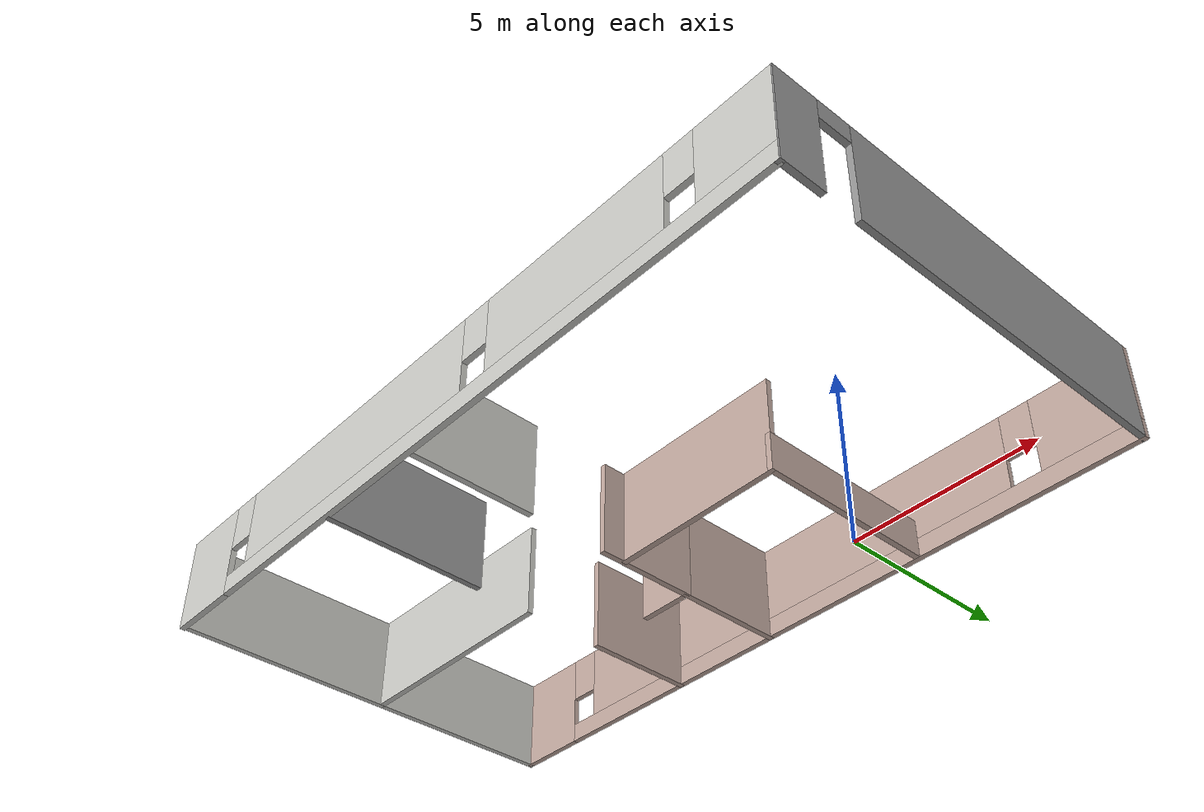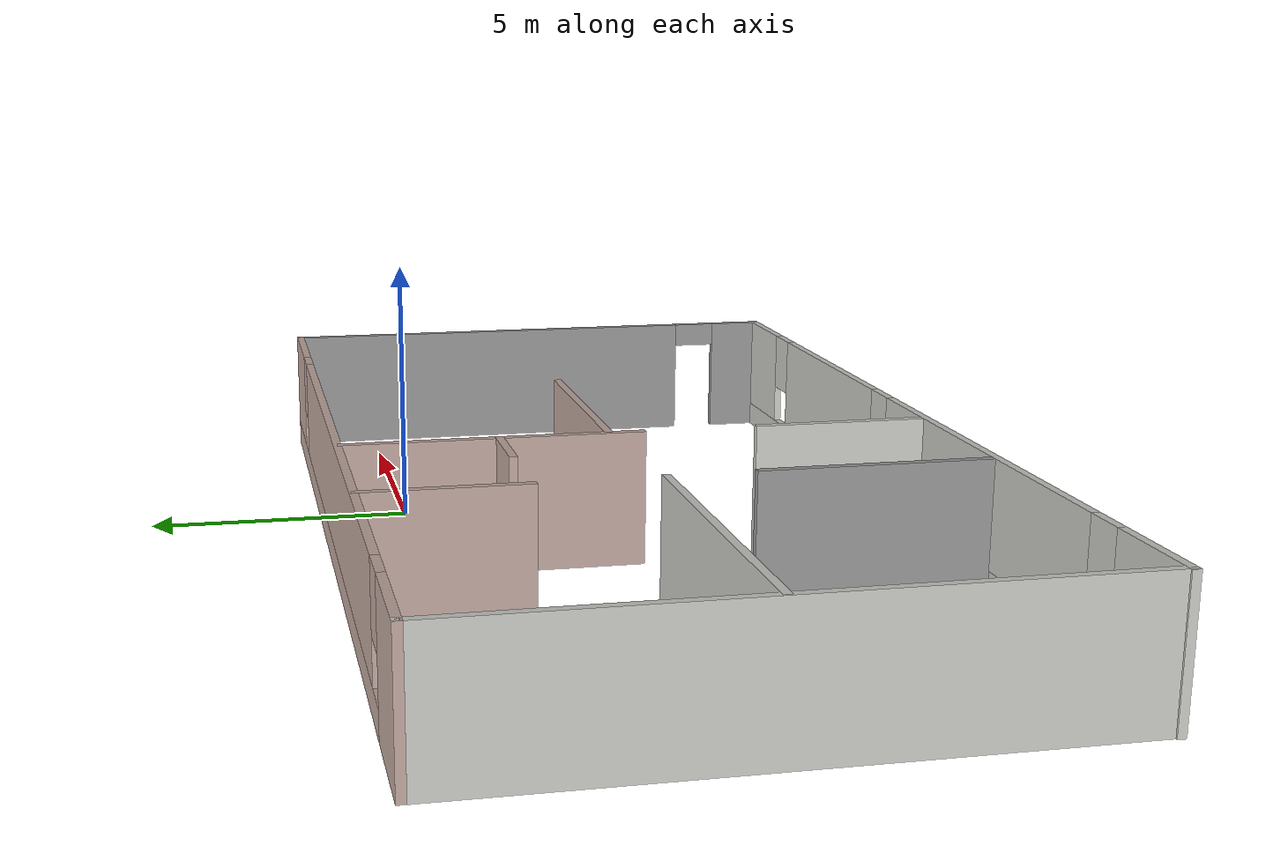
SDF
<?xml version='1.0'?>
<sdf version='1.6'>
  <model name='Building1'>
    <pose frame=''>-3.49446 -3.85282 0 0 -0 0</pose>
    <link name='Wall_0'>
      <collision name='Wall_0_Collision'>
        <geometry>
          <box>
            <size>11.1055 0.15 2.5</size>
          </box>
        </geometry>
        <pose frame=''>0 0 1.25 0 -0 0</pose>
      </collision>
      <visual name='Wall_0_Visual'>
        <pose frame=''>0 0 1.25 0 -0 0</pose>
        <geometry>
          <box>
            <size>11.1055 0.15 2.5</size>
          </box>
        </geometry>
        <material>
          <script>
            <uri>file://media/materials/scripts/gazebo.material</uri>
            <name>Gazebo/CeilingTiled</name>
          </script>
          <ambient>1 1 1 1</ambient>
        </material>
        <meta>
          <layer>0</layer>
        </meta>
      </visual>
      <pose frame=''>-9.90728 -5.4e-05 0 0 0 -1.5708</pose>
    </link>
    <link name='Wall_1'>
      <pose frame=''>-0.01759 -5.47777 0 0 -0 5e-06</pose>
      <visual name='Wall_1_Visual_0'>
        <pose frame=''>-8.96838 0 1.25 0 -0 0</pose>
        <geometry>
          <box>
            <size>2.06298 0.15 2.5</size>
          </box>
        </geometry>
        <material>
          <script>
            <uri>file://media/materials/scripts/gazebo.material</uri>
            <name>Gazebo/CeilingTiled</name>
          </script>
          <ambient>1 1 1 1</ambient>
        </material>
        <meta>
          <layer>0</layer>
        </meta>
      </visual>
      <collision name='Wall_1_Collision_0'>
        <geometry>
          <box>
            <size>2.06298 0.15 2.5</size>
          </box>
        </geometry>
        <pose frame=''>-8.96838 0 1.25 0 -0 0</pose>
      </collision>
      <visual name='Wall_1_Visual_1'>
        <pose frame=''>1.03149 0 0.25 0 -0 0</pose>
        <geometry>
          <box>
            <size>17.9368 0.15 0.5</size>
          </box>
        </geometry>
        <material>
          <script>
            <uri>file://media/materials/scripts/gazebo.material</uri>
            <name>Gazebo/CeilingTiled</name>
          </script>
          <ambient>1 1 1 1</ambient>
        </material>
        <meta>
          <layer>0</layer>
        </meta>
      </visual>
      <collision name='Wall_1_Collision_1'>
        <geometry>
          <box>
            <size>17.9368 0.15 0.5</size>
          </box>
        </geometry>
        <pose frame=''>1.03149 0 0.25 0 -0 0</pose>
      </collision>
      <visual name='Wall_1_Visual_2'>
        <pose frame=''>-2.98124 0 1.5 0 -0 0</pose>
        <geometry>
          <box>
            <size>8.3113 0.15 2</size>
          </box>
        </geometry>
        <material>
          <script>
            <uri>file://media/materials/scripts/gazebo.material</uri>
            <name>Gazebo/CeilingTiled</name>
          </script>
          <ambient>1 1 1 1</ambient>
        </material>
        <meta>
          <layer>0</layer>
        </meta>
      </visual>
      <collision name='Wall_1_Collision_2'>
        <geometry>
          <box>
            <size>8.3113 0.15 2</size>
          </box>
        </geometry>
        <pose frame=''>-2.98124 0 1.5 0 -0 0</pose>
      </collision>
      <visual name='Wall_1_Visual_3'>
        <pose frame=''>4.59979 0 1.5 0 -0 0</pose>
        <geometry>
          <box>
            <size>5.25075 0.15 2</size>
          </box>
        </geometry>
        <material>
          <script>
            <uri>file://media/materials/scripts/gazebo.material</uri>
            <name>Gazebo/CeilingTiled</name>
          </script>
          <ambient>1 1 1 1</ambient>
        </material>
        <meta>
          <layer>0</layer>
        </meta>
      </visual>
      <collision name='Wall_1_Collision_3'>
        <geometry>
          <box>
            <size>5.25075 0.15 2</size>
          </box>
        </geometry>
        <pose frame=''>4.59979 0 1.5 0 -0 0</pose>
      </collision>
      <visual name='Wall_1_Visual_4'>
        <pose frame=''>9.01252 0 1.5 0 -0 0</pose>
        <geometry>
          <box>
            <size>1.97471 0.15 2</size>
          </box>
        </geometry>
        <material>
          <script>
            <uri>file://media/materials/scripts/gazebo.material</uri>
            <name>Gazebo/CeilingTiled</name>
          </script>
          <ambient>1 1 1 1</ambient>
        </material>
        <meta>
          <layer>0</layer>
        </meta>
      </visual>
      <collision name='Wall_1_Collision_4'>
        <geometry>
          <box>
            <size>1.97471 0.15 2</size>
          </box>
        </geometry>
        <pose frame=''>9.01252 0 1.5 0 -0 0</pose>
      </collision>
      <visual name='Wall_1_Visual_5'>
        <pose frame=''>-7.53689 0 1.9 0 -0 0</pose>
        <geometry>
          <box>
            <size>0.8 0.15 1.2</size>
          </box>
        </geometry>
        <material>
          <script>
            <uri>file://media/materials/scripts/gazebo.material</uri>
            <name>Gazebo/CeilingTiled</name>
          </script>
          <ambient>1 1 1 1</ambient>
        </material>
        <meta>
          <layer>0</layer>
        </meta>
      </visual>
      <collision name='Wall_1_Collision_5'>
        <geometry>
          <box>
            <size>0.8 0.15 1.2</size>
          </box>
        </geometry>
        <pose frame=''>-7.53689 0 1.9 0 -0 0</pose>
      </collision>
      <visual name='Wall_1_Visual_6'>
        <pose frame=''>1.57441 0 1.9 0 -0 0</pose>
        <geometry>
          <box>
            <size>0.8 0.15 1.2</size>
          </box>
        </geometry>
        <material>
          <script>
            <uri>file://media/materials/scripts/gazebo.material</uri>
            <name>Gazebo/CeilingTiled</name>
          </script>
          <ambient>1 1 1 1</ambient>
        </material>
        <meta>
          <layer>0</layer>
        </meta>
      </visual>
      <collision name='Wall_1_Collision_6'>
        <geometry>
          <box>
            <size>0.8 0.15 1.2</size>
          </box>
        </geometry>
        <pose frame=''>1.57441 0 1.9 0 -0 0</pose>
      </collision>
      <visual name='Wall_1_Visual_7'>
        <pose frame=''>7.62516 0 1.9 0 -0 0</pose>
        <geometry>
          <box>
            <size>0.8 0.15 1.2</size>
          </box>
        </geometry>
        <material>
          <script>
            <uri>file://media/materials/scripts/gazebo.material</uri>
            <name>Gazebo/CeilingTiled</name>
          </script>
          <ambient>1 1 1 1</ambient>
        </material>
        <meta>
          <layer>0</layer>
        </meta>
      </visual>
      <collision name='Wall_1_Collision_7'>
        <geometry>
          <box>
            <size>0.8 0.15 1.2</size>
          </box>
        </geometry>
        <pose frame=''>7.62516 0 1.9 0 -0 0</pose>
      </collision>
    </link>
    <link name='Wall_10'>
      <collision name='Wall_10_Collision'>
        <geometry>
          <box>
            <size>4.25 0.15 2.5</size>
          </box>
        </geometry>
        <pose frame=''>0 0 1.25 0 -0 0</pose>
      </collision>
      <visual name='Wall_10_Visual'>
        <pose frame=''>0 0 1.25 0 -0 0</pose>
        <geometry>
          <box>
            <size>4.25 0.15 2.5</size>
          </box>
        </geometry>
        <material>
          <script>
            <uri>file://media/materials/scripts/gazebo.material</uri>
            <name>Gazebo/Grey</name>
          </script>
          <ambient>1 1 1 1</ambient>
        </material>
        <meta>
          <layer>0</layer>
        </meta>
      </visual>
      <pose frame=''>-3.71999 -3.32433 0 0 0 -1.5708</pose>
    </link>
    <link name='Wall_12'>
      <collision name='Wall_12_Collision'>
        <geometry>
          <box>
            <size>3 0.15 2.5</size>
          </box>
        </geometry>
        <pose frame=''>0 0 1.25 0 -0 0</pose>
      </collision>
      <visual name='Wall_12_Visual'>
        <pose frame=''>0 0 1.25 0 -0 0</pose>
        <geometry>
          <box>
            <size>3 0.15 2.5</size>
          </box>
        </geometry>
        <material>
          <script>
            <uri>file://media/materials/scripts/gazebo.material</uri>
            <name>Gazebo/Grey</name>
          </script>
          <ambient>0.760784 0.662745 0.627451 1</ambient>
        </material>
        <meta>
          <layer>0</layer>
        </meta>
      </visual>
      <pose frame=''>-0.624261 4.01982 0 0 0 -1.5708</pose>
    </link>
    <link name='Wall_13'>
      <collision name='Wall_13_Collision'>
        <geometry>
          <box>
            <size>1.5 0.15 2.5</size>
          </box>
        </geometry>
        <pose frame=''>0 0 1.25 0 -0 0</pose>
      </collision>
      <visual name='Wall_13_Visual'>
        <pose frame=''>0 0 1.25 0 -0 0</pose>
        <geometry>
          <box>
            <size>1.5 0.15 2.5</size>
          </box>
        </geometry>
        <material>
          <script>
            <uri>file://media/materials/scripts/gazebo.material</uri>
            <name>Gazebo/Grey</name>
          </script>
          <ambient>0.760784 0.662745 0.627451 1</ambient>
        </material>
        <meta>
          <layer>0</layer>
        </meta>
      </visual>
      <pose frame=''>-1.29926 2.59482 0 0 -0 3.14159</pose>
    </link>
    <link name='Wall_15'>
      <collision name='Wall_15_Collision'>
        <geometry>
          <box>
            <size>2.75 0.15 2.5</size>
          </box>
        </geometry>
        <pose frame=''>0 0 1.25 0 -0 0</pose>
      </collision>
      <visual name='Wall_15_Visual'>
        <pose frame=''>0 0 1.25 0 -0 0</pose>
        <geometry>
          <box>
            <size>2.75 0.15 2.5</size>
          </box>
        </geometry>
        <material>
          <script>
            <uri>file://media/materials/scripts/gazebo.material</uri>
            <name>Gazebo/Grey</name>
          </script>
          <ambient>0.760784 0.662745 0.627451 1</ambient>
        </material>
        <meta>
          <layer>0</layer>
        </meta>
      </visual>
      <pose frame=''>-0.624261 1.29482 0 0 0 -1.5708</pose>
    </link>
    <link name='Wall_17'>
      <collision name='Wall_17_Collision'>
        <geometry>
          <box>
            <size>3.25 0.15 2.5</size>
          </box>
        </geometry>
        <pose frame=''>0 0 1.25 0 -0 0</pose>
      </collision>
      <visual name='Wall_17_Visual'>
        <pose frame=''>0 0 1.25 0 -0 0</pose>
        <geometry>
          <box>
            <size>3.25 0.15 2.5</size>
          </box>
        </geometry>
        <material>
          <script>
            <uri>file://media/materials/scripts/gazebo.material</uri>
            <name>Gazebo/CeilingTiled</name>
          </script>
          <ambient>1 1 1 1</ambient>
        </material>
        <meta>
          <layer>0</layer>
        </meta>
      </visual>
      <pose frame=''>-0.624261 -3.78915 0 0 0 -1.5708</pose>
    </link>
    <link name='Wall_19'>
      <collision name='Wall_19_Collision'>
        <geometry>
          <box>
            <size>4.75 0.15 2.5</size>
          </box>
        </geometry>
        <pose frame=''>0 0 1.25 0 -0 0</pose>
      </collision>
      <visual name='Wall_19_Visual'>
        <pose frame=''>0 0 1.25 0 -0 0</pose>
        <geometry>
          <box>
            <size>4.75 0.15 2.5</size>
          </box>
        </geometry>
        <material>
          <script>
            <uri>file://media/materials/scripts/gazebo.material</uri>
            <name>Gazebo/Grey</name>
          </script>
          <ambient>0.760784 0.662745 0.627451 1</ambient>
        </material>
        <meta>
          <layer>0</layer>
        </meta>
      </visual>
      <pose frame=''>1.74646 0.589822 0 0 -0 0</pose>
    </link>
    <link name='Wall_2'>
      <pose frame=''>9.94246 5.4e-05 0 0 -0 1.5708</pose>
      <visual name='Wall_2_Visual_0'>
        <pose frame=''>-4.96793 0 1.25 0 -0 0</pose>
        <geometry>
          <box>
            <size>1.16968 0.15 2.5</size>
          </box>
        </geometry>
        <material>
          <script>
            <uri>file://media/materials/scripts/gazebo.material</uri>
            <name>Gazebo/Grey</name>
          </script>
          <ambient>1 1 1 1</ambient>
        </material>
        <meta>
          <layer>0</layer>
        </meta>
      </visual>
      <collision name='Wall_2_Collision_0'>
        <geometry>
          <box>
            <size>1.16968 0.15 2.5</size>
          </box>
        </geometry>
        <pose frame=''>-4.96793 0 1.25 0 -0 0</pose>
      </collision>
      <visual name='Wall_2_Visual_1'>
        <pose frame=''>1.03484 0 1.25 0 -0 0</pose>
        <geometry>
          <box>
            <size>9.03585 0.15 2.5</size>
          </box>
        </geometry>
        <material>
          <script>
            <uri>file://media/materials/scripts/gazebo.material</uri>
            <name>Gazebo/Grey</name>
          </script>
          <ambient>1 1 1 1</ambient>
        </material>
        <meta>
          <layer>0</layer>
        </meta>
      </visual>
      <collision name='Wall_2_Collision_1'>
        <geometry>
          <box>
            <size>9.03585 0.15 2.5</size>
          </box>
        </geometry>
        <pose frame=''>1.03484 0 1.25 0 -0 0</pose>
      </collision>
      <visual name='Wall_2_Visual_2'>
        <pose frame=''>-3.93309 0 2.25 0 -0 0</pose>
        <geometry>
          <box>
            <size>0.9 0.15 0.5</size>
          </box>
        </geometry>
        <material>
          <script>
            <uri>file://media/materials/scripts/gazebo.material</uri>
            <name>Gazebo/Grey</name>
          </script>
          <ambient>1 1 1 1</ambient>
        </material>
        <meta>
          <layer>0</layer>
        </meta>
      </visual>
      <collision name='Wall_2_Collision_2'>
        <geometry>
          <box>
            <size>0.9 0.15 0.5</size>
          </box>
        </geometry>
        <pose frame=''>-3.93309 0 2.25 0 -0 0</pose>
      </collision>
    </link>
    <link name='Wall_20'>
      <collision name='Wall_20_Collision'>
        <geometry>
          <box>
            <size>5 0.15 1</size>
          </box>
        </geometry>
        <pose frame=''>0 0 0.5 0 -0 0</pose>
      </collision>
      <visual name='Wall_20_Visual'>
        <pose frame=''>0 0 0.5 0 -0 0</pose>
        <geometry>
          <box>
            <size>5 0.15 1</size>
          </box>
        </geometry>
        <material>
          <script>
            <uri>file://media/materials/scripts/gazebo.material</uri>
            <name>Gazebo/Grey</name>
          </script>
          <ambient>0.760784 0.662745 0.627451 1</ambient>
        </material>
        <meta>
          <layer>0</layer>
        </meta>
      </visual>
      <pose frame=''>4.04646 3.01482 0 0 -0 1.5708</pose>
    </link>
    <link name='Wall_4'>
      <pose frame=''>0.017589 5.47777 0 0 -0 5e-06</pose>
      <visual name='Wall_4_Visual_0'>
        <pose frame=''>-8.98597 0 1.25 0 -0 0</pose>
        <geometry>
          <box>
            <size>2.0278 0.15 2.5</size>
          </box>
        </geometry>
        <material>
          <script>
            <uri>file://media/materials/scripts/gazebo.material</uri>
            <name>Gazebo/Grey</name>
          </script>
          <ambient>0.760784 0.662745 0.627451 1</ambient>
        </material>
        <meta>
          <layer>0</layer>
        </meta>
      </visual>
      <collision name='Wall_4_Collision_0'>
        <geometry>
          <box>
            <size>2.0278 0.15 2.5</size>
          </box>
        </geometry>
        <pose frame=''>-8.98597 0 1.25 0 -0 0</pose>
      </collision>
      <visual name='Wall_4_Visual_1'>
        <pose frame=''>1.0139 0 0.25 0 -0 0</pose>
        <geometry>
          <box>
            <size>17.9719 0.15 0.5</size>
          </box>
        </geometry>
        <material>
          <script>
            <uri>file://media/materials/scripts/gazebo.material</uri>
            <name>Gazebo/Grey</name>
          </script>
          <ambient>0.760784 0.662745 0.627451 1</ambient>
        </material>
        <meta>
          <layer>0</layer>
        </meta>
      </visual>
      <collision name='Wall_4_Collision_1'>
        <geometry>
          <box>
            <size>17.9719 0.15 0.5</size>
          </box>
        </geometry>
        <pose frame=''>1.0139 0 0.25 0 -0 0</pose>
      </collision>
      <visual name='Wall_4_Visual_2'>
        <pose frame=''>-0.219705 0 1.5 0 -0 0</pose>
        <geometry>
          <box>
            <size>13.9047 0.15 2</size>
          </box>
        </geometry>
        <material>
          <script>
            <uri>file://media/materials/scripts/gazebo.material</uri>
            <name>Gazebo/Grey</name>
          </script>
          <ambient>0.760784 0.662745 0.627451 1</ambient>
        </material>
        <meta>
          <layer>0</layer>
        </meta>
      </visual>
      <collision name='Wall_4_Collision_2'>
        <geometry>
          <box>
            <size>13.9047 0.15 2</size>
          </box>
        </geometry>
        <pose frame=''>-0.219705 0 1.5 0 -0 0</pose>
      </collision>
      <visual name='Wall_4_Visual_3'>
        <pose frame=''>8.76626 0 1.5 0 -0 0</pose>
        <geometry>
          <box>
            <size>2.46721 0.15 2</size>
          </box>
        </geometry>
        <material>
          <script>
            <uri>file://media/materials/scripts/gazebo.material</uri>
            <name>Gazebo/Grey</name>
          </script>
          <ambient>0.760784 0.662745 0.627451 1</ambient>
        </material>
        <meta>
          <layer>0</layer>
        </meta>
      </visual>
      <collision name='Wall_4_Collision_3'>
        <geometry>
          <box>
            <size>2.46721 0.15 2</size>
          </box>
        </geometry>
        <pose frame=''>8.76626 0 1.5 0 -0 0</pose>
      </collision>
      <visual name='Wall_4_Visual_4'>
        <pose frame=''>-7.57207 0 1.9 0 -0 0</pose>
        <geometry>
          <box>
            <size>0.8 0.15 1.2</size>
          </box>
        </geometry>
        <material>
          <script>
            <uri>file://media/materials/scripts/gazebo.material</uri>
            <name>Gazebo/Grey</name>
          </script>
          <ambient>0.760784 0.662745 0.627451 1</ambient>
        </material>
        <meta>
          <layer>0</layer>
        </meta>
      </visual>
      <collision name='Wall_4_Collision_4'>
        <geometry>
          <box>
            <size>0.8 0.15 1.2</size>
          </box>
        </geometry>
        <pose frame=''>-7.57207 0 1.9 0 -0 0</pose>
      </collision>
      <visual name='Wall_4_Visual_5'>
        <pose frame=''>7.13266 0 1.9 0 -0 0</pose>
        <geometry>
          <box>
            <size>0.8 0.15 1.2</size>
          </box>
        </geometry>
        <material>
          <script>
            <uri>file://media/materials/scripts/gazebo.material</uri>
            <name>Gazebo/Grey</name>
          </script>
          <ambient>0.760784 0.662745 0.627451 1</ambient>
        </material>
        <meta>
          <layer>0</layer>
        </meta>
      </visual>
      <collision name='Wall_4_Collision_5'>
        <geometry>
          <box>
            <size>0.8 0.15 1.2</size>
          </box>
        </geometry>
        <pose frame=''>7.13266 0 1.9 0 -0 0</pose>
      </collision>
    </link>
    <link name='Wall_6'>
      <collision name='Wall_6_Collision'>
        <geometry>
          <box>
            <size>3 0.15 2.5</size>
          </box>
        </geometry>
        <pose frame=''>0 0 1.25 0 -0 0</pose>
      </collision>
      <visual name='Wall_6_Visual'>
        <pose frame=''>0 0 1.25 0 -0 0</pose>
        <geometry>
          <box>
            <size>3 0.15 2.5</size>
          </box>
        </geometry>
        <material>
          <script>
            <uri>file://media/materials/scripts/gazebo.material</uri>
            <name>Gazebo/Grey</name>
          </script>
          <ambient>0.760784 0.662745 0.627451 1</ambient>
        </material>
        <meta>
          <layer>0</layer>
        </meta>
      </visual>
      <pose frame=''>-3.79035 4.01982 0 0 0 -1.5708</pose>
    </link>
    <link name='Wall_8'>
      <collision name='Wall_8_Collision'>
        <geometry>
          <box>
            <size>6.25 0.15 2.5</size>
          </box>
        </geometry>
        <pose frame=''>0 0 1.25 0 -0 0</pose>
      </collision>
      <visual name='Wall_8_Visual'>
        <pose frame=''>0 0 1.25 0 -0 0</pose>
        <geometry>
          <box>
            <size>6.25 0.15 2.5</size>
          </box>
        </geometry>
        <material>
          <script>
            <uri>file://media/materials/scripts/gazebo.material</uri>
            <name>Gazebo/CeilingTiled</name>
          </script>
          <ambient>1 1 1 1</ambient>
        </material>
        <meta>
          <layer>0</layer>
        </meta>
      </visual>
      <pose frame=''>-6.82628 0.343897 0 0 -0 0</pose>
    </link>
    <static>1</static>
  </model>
</sdf>
